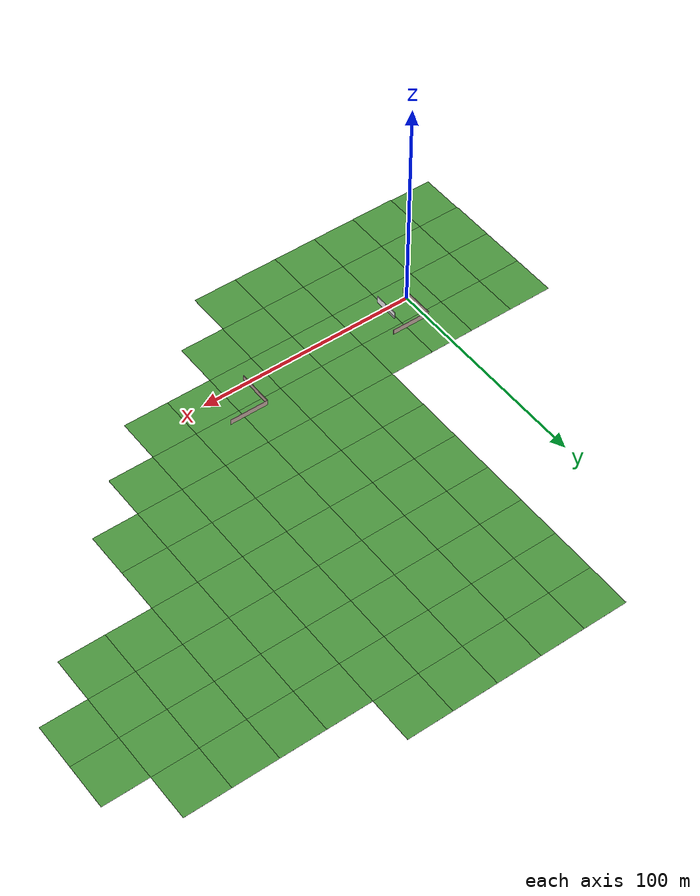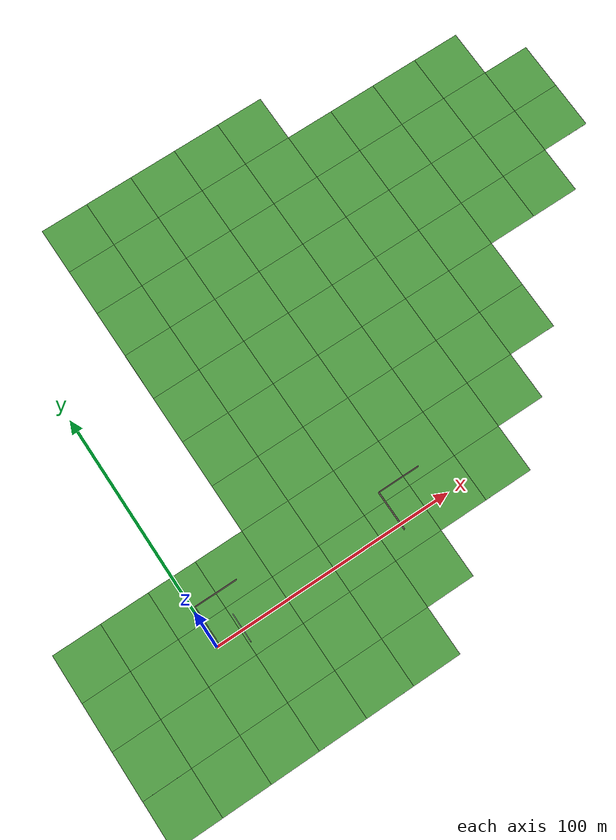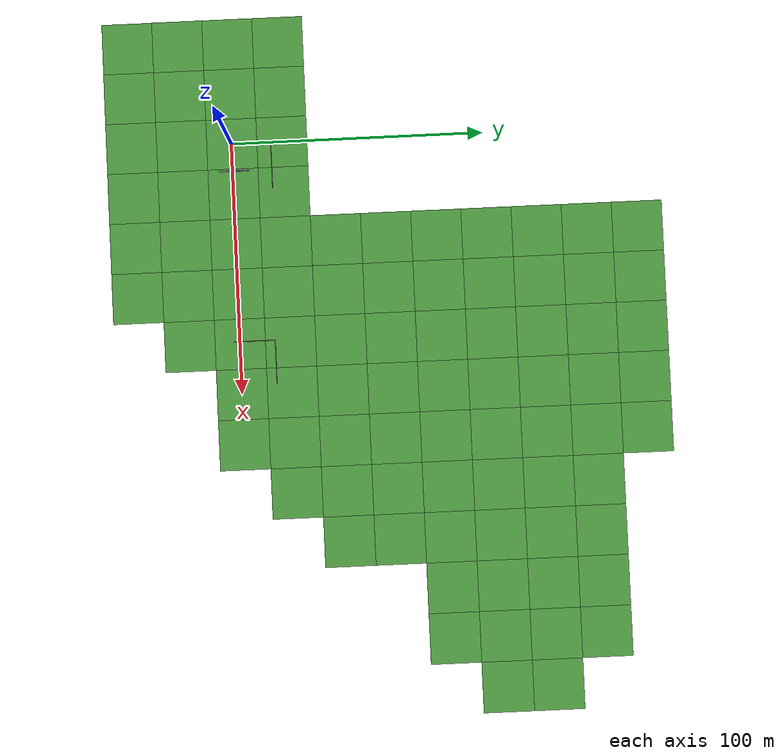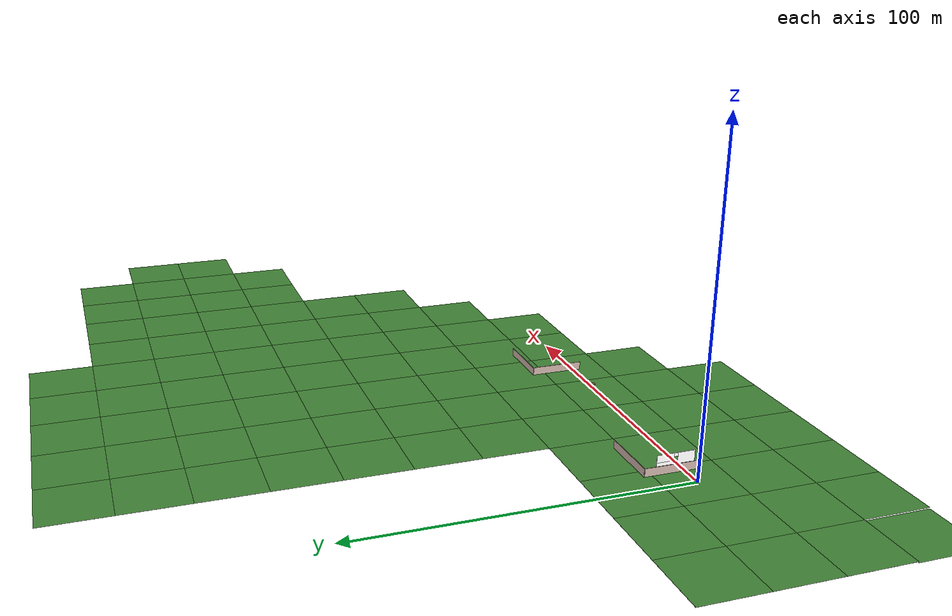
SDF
<sdf version="1.5">
 <world name="default">
  <spherical_coordinates>
   <latitude_deg>48.878922</latitude_deg>
   <longitude_deg>2.367782</longitude_deg>
  </spherical_coordinates>
  <physics type="ode">
   <real_time_update_rate>1000</real_time_update_rate>
   <max_step_size>0.001</max_step_size>
   <real_time_factor>1.0</real_time_factor>
   <max_contacts>20</max_contacts>
   <gravity>0 0 -9.81</gravity>
   <magnetic_field>0.1062e-6 20.8038e-6 -43.2881e-6</magnetic_field>
   <ode>
    <solver>
     <type>world</type>
     <min_step_size>0.0001</min_step_size>
     <iters>50</iters>
     <precon_iters>0</precon_iters>
     <sor>1.4</sor>
     <use_dynamic_moi_rescaling>1</use_dynamic_moi_rescaling>
    </solver>
    <constraints>
     <cfm>0</cfm>
     <erp>0.2</erp>
     <contact_max_correcting_vel>100.0</contact_max_correcting_vel>
     <contact_surface_layer>0.001</contact_surface_layer>
    </constraints>
   </ode>
  </physics>
  <atmosphere type="adiabatic">
   <temperature>298.15</temperature>
   <pressure>101325</pressure>
   <temperature_gradient>-0.0065</temperature_gradient>
  </atmosphere>
  <plugin name="fwman" filename="libsphinx_fwman.so">
   <spawn_point name="default"><pose>0 0 0.2 0 0 0</pose></spawn_point>
  </plugin>
  <plugin name="wind" filename="libsphinx_wind.so">
   <magnitude_mean>0.0</magnitude_mean>
   <direction_mean>0.0</direction_mean>
   <elevation_mean>0.0</elevation_mean>
   <magnitude_time_for_rise>10.0</magnitude_time_for_rise>
   <direction_time_for_rise>30.0</direction_time_for_rise>
   <elevation_time_for_rise>0.0</elevation_time_for_rise>
   <magnitude_expr>val*(1+0.05*sin(2*pi*time/15))</magnitude_expr>
   <direction_expr>360*time/60</direction_expr>
   <elevation_expr>0.03*noise()</elevation_expr>
  </plugin>
  <include><uri>model://grass_plane</uri></include>
  <include><uri>model://sun</uri></include>
  <scene>
   <sky><time>8</time><clouds><speed>12</speed></clouds></sky>
   <grid>false</grid>
   <origin_visual>false</origin_visual>
  </scene>
  <model name="wall1">
   <static>true</static>
   <pose>11.18 5.7 3.49 0 0 0</pose>
   <include><uri>model://wall</uri></include>
  </model>
  <model name="window">
   <static>true</static>
   <pose>9.3 0.7 0 0 0 1.57</pose>
   <include><uri>model://window_door</uri></include>
  </model>
  <model name="table">
   <static>true</static>
   <pose>65 -0.5 0 0 0 0</pose>
   <include><uri>model://table</uri></include>
  </model>
  <model name="wall2">
   <static>true</static>
   <pose>89 4 0 0 0 0</pose>
   <include><uri>model://wall</uri></include>
  </model>
 </world>
</sdf>

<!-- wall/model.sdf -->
<sdf version='1.6'>
  <model name='wall'>
    <pose frame=''>-1.26581 1.80502 0 0 -0 0</pose>
    <link name='Wall_0'>
      <collision name='Wall_0_Collision'>
        <geometry>
          <box>
            <size>16.5 0.15 2.5</size>
          </box>
        </geometry>
        <pose frame=''>0 0 1.25 0 -0 0</pose>
      </collision>
      <visual name='Wall_0_Visual'>
        <pose frame=''>0 0 1.25 0 -0 0</pose>
        <geometry>
          <box>
            <size>16.5 0.15 2.5</size>
          </box>
        </geometry>
        <material>
          <script>
            <uri>file://media/materials/scripts/gazebo.material</uri>
            <name>Gazebo/Grey</name>
          </script>
          <ambient>0.760784 0.662745 0.627451 1</ambient>
        </material>
        <meta>
          <layer>0</layer>
        </meta>
      </visual>
      <pose frame=''>-8.71419 -1.8e-05 0 0 0 -1.5708</pose>
    </link>
    <link name='Wall_2'>
      <collision name='Wall_2_Collision'>
        <geometry>
          <box>
            <size>17.5784 0.15 2.5</size>
          </box>
        </geometry>
        <pose frame=''>0 0 1.25 0 -0 0</pose>
      </collision>
      <visual name='Wall_2_Visual'>
        <pose frame=''>0 0 1.25 0 -0 0</pose>
        <geometry>
          <box>
            <size>17.5784 0.15 2.5</size>
          </box>
        </geometry>
        <material>
          <script>
            <uri>file://media/materials/scripts/gazebo.material</uri>
            <name>Gazebo/Grey</name>
          </script>
          <ambient>0.760784 0.662745 0.627451 1</ambient>
        </material>
        <meta>
          <layer>0</layer>
        </meta>
      </visual>
      <pose frame=''>0 8.17066 0 0 0 -0.000496</pose>
    </link>
    <static>1</static>
  </model>
</sdf>

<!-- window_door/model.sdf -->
<sdf version="1.5">
  <model name="window2">
    <pose>-0.12 -1.66 0 0 -0 0</pose>
    <link name="Wall_0">
      <pose>-0 0 0 0 -0 0</pose>
      <visual name="Wall_0_Visual_0">
        <pose>-3.2425 0 1.75 0 -0 0</pose>
        <geometry>
          <box>
            <size>5.265 0.15 3.5</size>
          </box>
        </geometry>
        <material>
          <script>
            <uri>model://window_door/materials/scripts</uri>
            <uri>model://window_door/materials/textures</uri>
            <name>Wall/NiceWall</name>
          </script>
          <ambient>1 1 1 1</ambient>
        </material>
      </visual>
      <collision name="Wall_0_Collision_0">
        <geometry>
          <box>
            <size>5.265 0.15 3.5</size>
          </box>
        </geometry>
        <pose>-3.2425 0 1.75 0 -0 0</pose>
      </collision>
      <visual name="Wall_0_Visual_1">
        <pose>2.6325 0 0.6 0 -0 0</pose>
        <geometry>
          <box>
            <size>6.485 0.15 1.2</size>
          </box>
        </geometry>
        <material>
          <script>
            <uri>model://window_door/materials/scripts</uri>
            <uri>model://window_door/materials/textures</uri>
            <name>Wall/NiceWall</name>
          </script>
          <ambient>1 1 1 1</ambient>
        </material>
      </visual>
      <collision name="Wall_0_Collision_1">
        <geometry>
          <box>
            <size>6.485 0.15 1.2</size>
          </box>
        </geometry>
        <pose>2.6325 0 0.6 0 -0 0</pose>
      </collision>
      <visual name="Wall_0_Visual_2">
        <pose>3.2325 0 2.35 0 -0 0</pose>
        <geometry>
          <box>
            <size>5.285 0.15 2.3</size>
          </box>
        </geometry>
        <material>
          <script>
            <uri>model://window_door/materials/scripts</uri>
            <uri>model://window_door/materials/textures</uri>
            <name>Wall/NiceWall</name>
          </script>
          <ambient>1 1 1 1</ambient>
        </material>
      </visual>
      <collision name="Wall_0_Collision_2">
        <geometry>
          <box>
            <size>5.285 0.15 2.3</size>
          </box>
        </geometry>
        <pose>3.2325 0 2.35 0 -0 0</pose>
      </collision>
      <visual name="Wall_0_Visual_3">
        <pose>-0.01 0 2.95 0 -0 0</pose>
        <geometry>
          <box>
            <size>1.2 0.15 1.1</size>
          </box>
        </geometry>
        <material>
          <script>
            <uri>model://window_door/materials/scripts</uri>
            <uri>model://window_door/materials/textures</uri>
            <name>Wall/NiceWall</name>
          </script>
          <ambient>1 1 1 1</ambient>
        </material>
      </visual>
      <collision name="Wall_0_Collision_3">
        <geometry>
          <box>
            <size>1.2 0.15 1.1</size>
          </box>
        </geometry>
        <pose>-0.01 0 2.95 0 -0 0</pose>
      </collision>
    </link>
    <static>1</static>
  </model>
</sdf>

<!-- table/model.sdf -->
<sdf version="1.5">
  <model name="table">
    <static>true</static>
    <link name="link">
      <collision name="surface">
        <pose>0 0 1.0 0 0 0</pose>
        <geometry>
          <box>
            <size>1.5 0.8 0.03</size>
          </box>
        </geometry>
        <surface>
          <friction>
            <ode>
              <mu>0.6</mu>
              <mu2>0.6</mu2>
            </ode>
          </friction>
        </surface>
      </collision>
      <visual name="visual1">
        <pose>0 0 1.0 0 0 0</pose>
        <geometry>
          <box>
            <size>1.5 0.8 0.03</size>
          </box>
        </geometry>
        <material>
          <script>
            <uri>model://media/materials/scripts/gazebo.material</uri>
            <name>Gazebo/Wood</name>
          </script>
        </material>
      </visual>
      <collision name="front_left_leg">
        <pose>0.68 0.38 0.5 0 0 0</pose>
        <geometry>
          <cylinder>
            <radius>0.02</radius>
            <length>1.0</length>
          </cylinder>
        </geometry>
      </collision>
      <visual name="front_left_leg">
        <pose>0.68 0.38 0.5 0 0 0</pose>
        <geometry>
          <cylinder>
            <radius>0.02</radius>
            <length>1.0</length>
          </cylinder>
        </geometry>
        <material>
          <script>
            <uri>model://media/materials/scripts/gazebo.material</uri>
            <name>Gazebo/Grey</name>
          </script>
        </material>
      </visual>
      <collision name="front_right_leg">
        <pose>0.68 -0.38 0.5 0 0 0</pose>
        <geometry>
          <cylinder>
            <radius>0.02</radius>
            <length>1.0</length>
          </cylinder>
        </geometry>
      </collision>
      <visual name="front_right_leg">
        <pose>0.68 -0.38 0.5 0 0 0</pose>
        <geometry>
          <cylinder>
            <radius>0.02</radius>
            <length>1.0</length>
          </cylinder>
        </geometry>
        <material>
          <script>
            <uri>model://media/materials/scripts/gazebo.material</uri>
            <name>Gazebo/Grey</name>
          </script>
        </material>
      </visual>
      <collision name="back_right_leg">
        <pose>-0.68 -0.38 0.5 0 0 0</pose>
        <geometry>
          <cylinder>
            <radius>0.02</radius>
            <length>1.0</length>
          </cylinder>
        </geometry>
      </collision>
      <visual name="back_right_leg">
        <pose>-0.68 -0.38 0.5 0 0 0</pose>
        <geometry>
          <cylinder>
            <radius>0.02</radius>
            <length>1.0</length>
          </cylinder>
        </geometry>
        <material>
          <script>
            <uri>model://media/materials/scripts/gazebo.material</uri>
            <name>Gazebo/Grey</name>
          </script>
        </material>
      </visual>
      <collision name="back_left_leg">
        <pose>-0.68 0.38 0.5 0 0 0</pose>
        <geometry>
          <cylinder>
            <radius>0.02</radius>
            <length>1.0</length>
          </cylinder>
        </geometry>
      </collision>
      <visual name="back_left_leg">
        <pose>-0.68 0.38 0.5 0 0 0</pose>
        <geometry>
          <cylinder>
            <radius>0.02</radius>
            <length>1.0</length>
          </cylinder>
        </geometry>
        <material>
          <script>
            <uri>model://media/materials/scripts/gazebo.material</uri>
            <name>Gazebo/Grey</name>
          </script>
        </material>
      </visual>
    </link>
  </model>
</sdf>

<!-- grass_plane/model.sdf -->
<sdf version='1.4'>
  <model name='grass_plane'>
    <static>true</static>
    <link name='link'>
      <collision name='collision'>
        <geometry>
          <plane>
            <normal>0 0 1</normal>
            <size>500 500</size>
          </plane>
        </geometry>
        <surface>
          <friction>
            <ode>
              <mu>0.5</mu>
              <mu2>.5</mu2>
            </ode>
          </friction>
        </surface>
      </collision>

      <visual name='visual_0'>
        <pose>-40 -40 0 0 0 0</pose>

        <cast_shadows>false</cast_shadows>
        <geometry>
          <plane>
            <normal>0 0 1</normal>
            <size>20 20</size>
          </plane>
        </geometry>
        <material>
          <script>
            <uri>model://../model_source/models/grass_plane/materials/scripts</uri>
            <uri>model://../model_source/models/grass_plane/materials/textures</uri>
            <name>vrc/grass</name>
          </script>
        </material>
      </visual>

      <visual name='visual_1'>
        <pose>-20 -40 0 0 0 0</pose>

        <cast_shadows>false</cast_shadows>
        <geometry>
          <plane>
            <normal>0 0 1</normal>
            <size>20 20</size>
          </plane>
        </geometry>
        <material>
          <script>
            <uri>model://../model_source/models/grass_plane/materials/scripts</uri>
            <uri>model://../model_source/models/grass_plane/materials/textures</uri>
            <name>vrc/grass</name>
          </script>
        </material>
      </visual>

      <visual name='visual_2'>
        <pose>0 -40 0 0 0 0</pose>

        <cast_shadows>false</cast_shadows>
        <geometry>
          <plane>
            <normal>0 0 1</normal>
            <size>20 20</size>
          </plane>
        </geometry>
        <material>
          <script>
            <uri>model://../model_source/models/grass_plane/materials/scripts</uri>
            <uri>model://../model_source/models/grass_plane/materials/textures</uri>
            <name>vrc/grass</name>
          </script>
        </material>
      </visual>

      <visual name='visual_3'>
        <pose>20 -40 0 0 0 0</pose>

        <cast_shadows>false</cast_shadows>
        <geometry>
          <plane>
            <normal>0 0 1</normal>
            <size>20 20</size>
          </plane>
        </geometry>
        <material>
          <script>
            <uri>model://../model_source/models/grass_plane/materials/scripts</uri>
            <uri>model://../model_source/models/grass_plane/materials/textures</uri>
            <name>vrc/grass</name>
          </script>
        </material>
      </visual>

      <visual name='visual_4'>
        <pose>40 -40 0 0 0 0</pose>

        <cast_shadows>false</cast_shadows>
        <geometry>
          <plane>
            <normal>0 0 1</normal>
            <size>20 20</size>
          </plane>
        </geometry>
        <material>
          <script>
            <uri>model://../model_source/models/grass_plane/materials/scripts</uri>
            <uri>model://../model_source/models/grass_plane/materials/textures</uri>
            <name>vrc/grass</name>
          </script>
        </material>
      </visual>

      <visual name='visual_5'>
        <pose>60 -40 0 0 0 0</pose>

        <cast_shadows>false</cast_shadows>
        <geometry>
          <plane>
            <normal>0 0 1</normal>
            <size>20 20</size>
          </plane>
        </geometry>
        <material>
          <script>
            <uri>model://../model_source/models/grass_plane/materials/scripts</uri>
            <uri>model://../model_source/models/grass_plane/materials/textures</uri>
            <name>vrc/grass</name>
          </script>
        </material>
      </visual>

      <visual name='visual_6'>
        <pose>-40 -20 0 0 0 0</pose>

        <cast_shadows>false</cast_shadows>
        <geometry>
          <plane>
            <normal>0 0 1</normal>
            <size>20 20</size>
          </plane>
        </geometry>
        <material>
          <script>
            <uri>model://../model_source/models/grass_plane/materials/scripts</uri>
            <uri>model://../model_source/models/grass_plane/materials/textures</uri>
            <name>vrc/grass</name>
          </script>
        </material>
      </visual>

      <visual name='visual_7'>
        <pose>-20 -20 0 0 0 0</pose>

        <cast_shadows>false</cast_shadows>
        <geometry>
          <plane>
            <normal>0 0 1</normal>
            <size>20 20</size>
          </plane>
        </geometry>
        <material>
          <script>
            <uri>model://../model_source/models/grass_plane/materials/scripts</uri>
            <uri>model://../model_source/models/grass_plane/materials/textures</uri>
            <name>vrc/grass</name>
          </script>
        </material>
      </visual>

      <visual name='visual_8'>
        <pose>0 -20 0 0 0 0</pose>

        <cast_shadows>false</cast_shadows>
        <geometry>
          <plane>
            <normal>0 0 1</normal>
            <size>20 20</size>
          </plane>
        </geometry>
        <material>
          <script>
            <uri>model://../model_source/models/grass_plane/materials/scripts</uri>
            <uri>model://../model_source/models/grass_plane/materials/textures</uri>
            <name>vrc/grass</name>
          </script>
        </material>
      </visual>

      <visual name='visual_9'>
        <pose>20 -20 0 0 0 0</pose>

        <cast_shadows>false</cast_shadows>
        <geometry>
          <plane>
            <normal>0 0 1</normal>
            <size>20 20</size>
          </plane>
        </geometry>
        <material>
          <script>
            <uri>model://../model_source/models/grass_plane/materials/scripts</uri>
            <uri>model://../model_source/models/grass_plane/materials/textures</uri>
            <name>vrc/grass</name>
          </script>
        </material>
      </visual>

      <visual name='visual_10'>
        <pose>40 -20 0 0 0 0</pose>

        <cast_shadows>false</cast_shadows>
        <geometry>
          <plane>
            <normal>0 0 1</normal>
            <size>20 20</size>
          </plane>
        </geometry>
        <material>
          <script>
            <uri>model://../model_source/models/grass_plane/materials/scripts</uri>
            <uri>model://../model_source/models/grass_plane/materials/textures</uri>
            <name>vrc/grass</name>
          </script>
        </material>
      </visual>

      <visual name='visual_11'>
        <pose>60 -20 0 0 0 0</pose>

        <cast_shadows>false</cast_shadows>
        <geometry>
          <plane>
            <normal>0 0 1</normal>
            <size>20 20</size>
          </plane>
        </geometry>
        <material>
          <script>
            <uri>model://../model_source/models/grass_plane/materials/scripts</uri>
            <uri>model://../model_source/models/grass_plane/materials/textures</uri>
            <name>vrc/grass</name>
          </script>
        </material>
      </visual>

      <visual name='visual_12'>
        <pose>80 -20 0 0 0 0</pose>

        <cast_shadows>false</cast_shadows>
        <geometry>
          <plane>
            <normal>0 0 1</normal>
            <size>20 20</size>
          </plane>
        </geometry>
        <material>
          <script>
            <uri>model://../model_source/models/grass_plane/materials/scripts</uri>
            <uri>model://../model_source/models/grass_plane/materials/textures</uri>
            <name>vrc/grass</name>
          </script>
        </material>
      </visual>

      <visual name='visual_13'>
        <pose>-40 0 0 0 0 0</pose>

        <cast_shadows>false</cast_shadows>
        <geometry>
          <plane>
            <normal>0 0 1</normal>
            <size>20 20</size>
          </plane>
        </geometry>
        <material>
          <script>
            <uri>model://../model_source/models/grass_plane/materials/scripts</uri>
            <uri>model://../model_source/models/grass_plane/materials/textures</uri>
            <name>vrc/grass</name>
          </script>
        </material>
      </visual>

      <visual name='visual_14'>
        <pose>-20 0 0 0 0 0</pose>

        <cast_shadows>false</cast_shadows>
        <geometry>
          <plane>
            <normal>0 0 1</normal>
            <size>20 20</size>
          </plane>
        </geometry>
        <material>
          <script>
            <uri>model://../model_source/models/grass_plane/materials/scripts</uri>
            <uri>model://../model_source/models/grass_plane/materials/textures</uri>
            <name>vrc/grass</name>
          </script>
        </material>
      </visual>

      <visual name='visual_15'>
        <pose>0 0 0 0 0 0</pose>

        <cast_shadows>false</cast_shadows>
        <geometry>
          <plane>
            <normal>0 0 1</normal>
            <size>20 20</size>
          </plane>
        </geometry>
        <material>
          <script>
            <uri>model://../model_source/models/grass_plane/materials/scripts</uri>
            <uri>model://../model_source/models/grass_plane/materials/textures</uri>
            <name>vrc/grass</name>
          </script>
        </material>
      </visual>

      <visual name='visual_16'>
        <pose>20 0 0 0 0 0</pose>

        <cast_shadows>false</cast_shadows>
        <geometry>
          <plane>
            <normal>0 0 1</normal>
            <size>20 20</size>
          </plane>
        </geometry>
        <material>
          <script>
            <uri>model://../model_source/models/grass_plane/materials/scripts</uri>
            <uri>model://../model_source/models/grass_plane/materials/textures</uri>
            <name>vrc/grass</name>
          </script>
        </material>
      </visual>

      <visual name='visual_17'>
        <pose>40 0 0 0 0 0</pose>

        <cast_shadows>false</cast_shadows>
        <geometry>
          <plane>
            <normal>0 0 1</normal>
            <size>20 20</size>
          </plane>
        </geometry>
        <material>
          <script>
            <uri>model://../model_source/models/grass_plane/materials/scripts</uri>
            <uri>model://../model_source/models/grass_plane/materials/textures</uri>
            <name>vrc/grass</name>
          </script>
        </material>
      </visual>

      <visual name='visual_18'>
        <pose>60 0 0 0 0 0</pose>

        <cast_shadows>false</cast_shadows>
        <geometry>
          <plane>
            <normal>0 0 1</normal>
            <size>20 20</size>
          </plane>
        </geometry>
        <material>
          <script>
            <uri>model://../model_source/models/grass_plane/materials/scripts</uri>
            <uri>model://../model_source/models/grass_plane/materials/textures</uri>
            <name>vrc/grass</name>
          </script>
        </material>
      </visual>

      <visual name='visual_19'>
        <pose>80 0 0 0 0 0</pose>

        <cast_shadows>false</cast_shadows>
        <geometry>
          <plane>
            <normal>0 0 1</normal>
            <size>20 20</size>
          </plane>
        </geometry>
        <material>
          <script>
            <uri>model://../model_source/models/grass_plane/materials/scripts</uri>
            <uri>model://../model_source/models/grass_plane/materials/textures</uri>
            <name>vrc/grass</name>
          </script>
        </material>
      </visual>

      <visual name='visual_20'>
        <pose>100 0 0 0 0 0</pose>

        <cast_shadows>false</cast_shadows>
        <geometry>
          <plane>
            <normal>0 0 1</normal>
            <size>20 20</size>
          </plane>
        </geometry>
        <material>
          <script>
            <uri>model://../model_source/models/grass_plane/materials/scripts</uri>
            <uri>model://../model_source/models/grass_plane/materials/textures</uri>
            <name>vrc/grass</name>
          </script>
        </material>
      </visual>

      <visual name='visual_21'>
        <pose>120 0 0 0 0 0</pose>

        <cast_shadows>false</cast_shadows>
        <geometry>
          <plane>
            <normal>0 0 1</normal>
            <size>20 20</size>
          </plane>
        </geometry>
        <material>
          <script>
            <uri>model://../model_source/models/grass_plane/materials/scripts</uri>
            <uri>model://../model_source/models/grass_plane/materials/textures</uri>
            <name>vrc/grass</name>
          </script>
        </material>
      </visual>

      <visual name='visual_22'>
        <pose>-40 20 0 0 0 0</pose>

        <cast_shadows>false</cast_shadows>
        <geometry>
          <plane>
            <normal>0 0 1</normal>
            <size>20 20</size>
          </plane>
        </geometry>
        <material>
          <script>
            <uri>model://../model_source/models/grass_plane/materials/scripts</uri>
            <uri>model://../model_source/models/grass_plane/materials/textures</uri>
            <name>vrc/grass</name>
          </script>
        </material>
      </visual>

      <visual name='visual_23'>
        <pose>-20 20 0 0 0 0</pose>

        <cast_shadows>false</cast_shadows>
        <geometry>
          <plane>
            <normal>0 0 1</normal>
            <size>20 20</size>
          </plane>
        </geometry>
        <material>
          <script>
            <uri>model://../model_source/models/grass_plane/materials/scripts</uri>
            <uri>model://../model_source/models/grass_plane/materials/textures</uri>
            <name>vrc/grass</name>
          </script>
        </material>
      </visual>

      <visual name='visual_24'>
        <pose>0 20 0 0 0 0</pose>

        <cast_shadows>false</cast_shadows>
        <geometry>
          <plane>
            <normal>0 0 1</normal>
            <size>20 20</size>
          </plane>
        </geometry>
        <material>
          <script>
            <uri>model://../model_source/models/grass_plane/materials/scripts</uri>
            <uri>model://../model_source/models/grass_plane/materials/textures</uri>
            <name>vrc/grass</name>
          </script>
        </material>
      </visual>

      <visual name='visual_25'>
        <pose>20 20 0 0 0 0</pose>

        <cast_shadows>false</cast_shadows>
        <geometry>
          <plane>
            <normal>0 0 1</normal>
            <size>20 20</size>
          </plane>
        </geometry>
        <material>
          <script>
            <uri>model://../model_source/models/grass_plane/materials/scripts</uri>
            <uri>model://../model_source/models/grass_plane/materials/textures</uri>
            <name>vrc/grass</name>
          </script>
        </material>
      </visual>

      <visual name='visual_26'>
        <pose>40 20 0 0 0 0</pose>

        <cast_shadows>false</cast_shadows>
        <geometry>
          <plane>
            <normal>0 0 1</normal>
            <size>20 20</size>
          </plane>
        </geometry>
        <material>
          <script>
            <uri>model://../model_source/models/grass_plane/materials/scripts</uri>
            <uri>model://../model_source/models/grass_plane/materials/textures</uri>
            <name>vrc/grass</name>
          </script>
        </material>
      </visual>

      <visual name='visual_27'>
        <pose>60 20 0 0 0 0</pose>

        <cast_shadows>false</cast_shadows>
        <geometry>
          <plane>
            <normal>0 0 1</normal>
            <size>20 20</size>
          </plane>
        </geometry>
        <material>
          <script>
            <uri>model://../model_source/models/grass_plane/materials/scripts</uri>
            <uri>model://../model_source/models/grass_plane/materials/textures</uri>
            <name>vrc/grass</name>
          </script>
        </material>
      </visual>

      <visual name='visual_28'>
        <pose>80 20 0 0 0 0</pose>

        <cast_shadows>false</cast_shadows>
        <geometry>
          <plane>
            <normal>0 0 1</normal>
            <size>20 20</size>
          </plane>
        </geometry>
        <material>
          <script>
            <uri>model://../model_source/models/grass_plane/materials/scripts</uri>
            <uri>model://../model_source/models/grass_plane/materials/textures</uri>
            <name>vrc/grass</name>
          </script>
        </material>
      </visual>

      <visual name='visual_29'>
        <pose>100 20 0 0 0 0</pose>

        <cast_shadows>false</cast_shadows>
        <geometry>
          <plane>
            <normal>0 0 1</normal>
            <size>20 20</size>
          </plane>
        </geometry>
        <material>
          <script>
            <uri>model://../model_source/models/grass_plane/materials/scripts</uri>
            <uri>model://../model_source/models/grass_plane/materials/textures</uri>
            <name>vrc/grass</name>
          </script>
        </material>
      </visual>

      <visual name='visual_30'>
        <pose>120 20 0 0 0 0</pose>

        <cast_shadows>false</cast_shadows>
        <geometry>
          <plane>
            <normal>0 0 1</normal>
            <size>20 20</size>
          </plane>
        </geometry>
        <material>
          <script>
            <uri>model://../model_source/models/grass_plane/materials/scripts</uri>
            <uri>model://../model_source/models/grass_plane/materials/textures</uri>
            <name>vrc/grass</name>
          </script>
        </material>
      </visual>

      <visual name='visual_31'>
        <pose>140 20 0 0 0 0</pose>

        <cast_shadows>false</cast_shadows>
        <geometry>
          <plane>
            <normal>0 0 1</normal>
            <size>20 20</size>
          </plane>
        </geometry>
        <material>
          <script>
            <uri>model://../model_source/models/grass_plane/materials/scripts</uri>
            <uri>model://../model_source/models/grass_plane/materials/textures</uri>
            <name>vrc/grass</name>
          </script>
        </material>
      </visual>

      <visual name='visual_32'>
        <pose>40 40 0 0 0 0</pose>

        <cast_shadows>false</cast_shadows>
        <geometry>
          <plane>
            <normal>0 0 1</normal>
            <size>20 20</size>
          </plane>
        </geometry>
        <material>
          <script>
            <uri>model://../model_source/models/grass_plane/materials/scripts</uri>
            <uri>model://../model_source/models/grass_plane/materials/textures</uri>
            <name>vrc/grass</name>
          </script>
        </material>
      </visual>

      <visual name='visual_33'>
        <pose>60 40 0 0 0 0</pose>

        <cast_shadows>false</cast_shadows>
        <geometry>
          <plane>
            <normal>0 0 1</normal>
            <size>20 20</size>
          </plane>
        </geometry>
        <material>
          <script>
            <uri>model://../model_source/models/grass_plane/materials/scripts</uri>
            <uri>model://../model_source/models/grass_plane/materials/textures</uri>
            <name>vrc/grass</name>
          </script>
        </material>
      </visual>

      <visual name='visual_34'>
        <pose>80 40 0 0 0 0</pose>

        <cast_shadows>false</cast_shadows>
        <geometry>
          <plane>
            <normal>0 0 1</normal>
            <size>20 20</size>
          </plane>
        </geometry>
        <material>
          <script>
            <uri>model://../model_source/models/grass_plane/materials/scripts</uri>
            <uri>model://../model_source/models/grass_plane/materials/textures</uri>
            <name>vrc/grass</name>
          </script>
        </material>
      </visual>

      <visual name='visual_35'>
        <pose>100 40 0 0 0 0</pose>

        <cast_shadows>false</cast_shadows>
        <geometry>
          <plane>
            <normal>0 0 1</normal>
            <size>20 20</size>
          </plane>
        </geometry>
        <material>
          <script>
            <uri>model://../model_source/models/grass_plane/materials/scripts</uri>
            <uri>model://../model_source/models/grass_plane/materials/textures</uri>
            <name>vrc/grass</name>
          </script>
        </material>
      </visual>

      <visual name='visual_36'>
        <pose>120 40 0 0 0 0</pose>

        <cast_shadows>false</cast_shadows>
        <geometry>
          <plane>
            <normal>0 0 1</normal>
            <size>20 20</size>
          </plane>
        </geometry>
        <material>
          <script>
            <uri>model://../model_source/models/grass_plane/materials/scripts</uri>
            <uri>model://../model_source/models/grass_plane/materials/textures</uri>
            <name>vrc/grass</name>
          </script>
        </material>
      </visual>

      <visual name='visual_37'>
        <pose>140 40 0 0 0 0</pose>

        <cast_shadows>false</cast_shadows>
        <geometry>
          <plane>
            <normal>0 0 1</normal>
            <size>20 20</size>
          </plane>
        </geometry>
        <material>
          <script>
            <uri>model://../model_source/models/grass_plane/materials/scripts</uri>
            <uri>model://../model_source/models/grass_plane/materials/textures</uri>
            <name>vrc/grass</name>
          </script>
        </material>
      </visual>

      <visual name='visual_38'>
        <pose>160 40 0 0 0 0</pose>

        <cast_shadows>false</cast_shadows>
        <geometry>
          <plane>
            <normal>0 0 1</normal>
            <size>20 20</size>
          </plane>
        </geometry>
        <material>
          <script>
            <uri>model://../model_source/models/grass_plane/materials/scripts</uri>
            <uri>model://../model_source/models/grass_plane/materials/textures</uri>
            <name>vrc/grass</name>
          </script>
        </material>
      </visual>

      <visual name='visual_39'>
        <pose>40 60 0 0 0 0</pose>

        <cast_shadows>false</cast_shadows>
        <geometry>
          <plane>
            <normal>0 0 1</normal>
            <size>20 20</size>
          </plane>
        </geometry>
        <material>
          <script>
            <uri>model://../model_source/models/grass_plane/materials/scripts</uri>
            <uri>model://../model_source/models/grass_plane/materials/textures</uri>
            <name>vrc/grass</name>
          </script>
        </material>
      </visual>

      <visual name='visual_40'>
        <pose>60 60 0 0 0 0</pose>

        <cast_shadows>false</cast_shadows>
        <geometry>
          <plane>
            <normal>0 0 1</normal>
            <size>20 20</size>
          </plane>
        </geometry>
        <material>
          <script>
            <uri>model://../model_source/models/grass_plane/materials/scripts</uri>
            <uri>model://../model_source/models/grass_plane/materials/textures</uri>
            <name>vrc/grass</name>
          </script>
        </material>
      </visual>

      <visual name='visual_41'>
        <pose>80 60 0 0 0 0</pose>

        <cast_shadows>false</cast_shadows>
        <geometry>
          <plane>
            <normal>0 0 1</normal>
            <size>20 20</size>
          </plane>
        </geometry>
        <material>
          <script>
            <uri>model://../model_source/models/grass_plane/materials/scripts</uri>
            <uri>model://../model_source/models/grass_plane/materials/textures</uri>
            <name>vrc/grass</name>
          </script>
        </material>
      </visual>

      <visual name='visual_42'>
        <pose>100 60 0 0 0 0</pose>

        <cast_shadows>false</cast_shadows>
        <geometry>
          <plane>
            <normal>0 0 1</normal>
            <size>20 20</size>
          </plane>
        </geometry>
        <material>
          <script>
            <uri>model://../model_source/models/grass_plane/materials/scripts</uri>
            <uri>model://../model_source/models/grass_plane/materials/textures</uri>
            <name>vrc/grass</name>
          </script>
        </material>
      </visual>

      <visual name='visual_43'>
        <pose>120 60 0 0 0 0</pose>

        <cast_shadows>false</cast_shadows>
        <geometry>
          <plane>
            <normal>0 0 1</normal>
            <size>20 20</size>
          </plane>
        </geometry>
        <material>
          <script>
            <uri>model://../model_source/models/grass_plane/materials/scripts</uri>
            <uri>model://../model_source/models/grass_plane/materials/textures</uri>
            <name>vrc/grass</name>
          </script>
        </material>
      </visual>

      <visual name='visual_44'>
        <pose>140 60 0 0 0 0</pose>

        <cast_shadows>false</cast_shadows>
        <geometry>
          <plane>
            <normal>0 0 1</normal>
            <size>20 20</size>
          </plane>
        </geometry>
        <material>
          <script>
            <uri>model://../model_source/models/grass_plane/materials/scripts</uri>
            <uri>model://../model_source/models/grass_plane/materials/textures</uri>
            <name>vrc/grass</name>
          </script>
        </material>
      </visual>

      <visual name='visual_45'>
        <pose>160 60 0 0 0 0</pose>

        <cast_shadows>false</cast_shadows>
        <geometry>
          <plane>
            <normal>0 0 1</normal>
            <size>20 20</size>
          </plane>
        </geometry>
        <material>
          <script>
            <uri>model://../model_source/models/grass_plane/materials/scripts</uri>
            <uri>model://../model_source/models/grass_plane/materials/textures</uri>
            <name>vrc/grass</name>
          </script>
        </material>
      </visual>

      <visual name='visual_46'>
        <pose>40 80 0 0 0 0</pose>

        <cast_shadows>false</cast_shadows>
        <geometry>
          <plane>
            <normal>0 0 1</normal>
            <size>20 20</size>
          </plane>
        </geometry>
        <material>
          <script>
            <uri>model://../model_source/models/grass_plane/materials/scripts</uri>
            <uri>model://../model_source/models/grass_plane/materials/textures</uri>
            <name>vrc/grass</name>
          </script>
        </material>
      </visual>

      <visual name='visual_47'>
        <pose>60 80 0 0 0 0</pose>

        <cast_shadows>false</cast_shadows>
        <geometry>
          <plane>
            <normal>0 0 1</normal>
            <size>20 20</size>
          </plane>
        </geometry>
        <material>
          <script>
            <uri>model://../model_source/models/grass_plane/materials/scripts</uri>
            <uri>model://../model_source/models/grass_plane/materials/textures</uri>
            <name>vrc/grass</name>
          </script>
        </material>
      </visual>

      <visual name='visual_48'>
        <pose>80 80 0 0 0 0</pose>

        <cast_shadows>false</cast_shadows>
        <geometry>
          <plane>
            <normal>0 0 1</normal>
            <size>20 20</size>
          </plane>
        </geometry>
        <material>
          <script>
            <uri>model://../model_source/models/grass_plane/materials/scripts</uri>
            <uri>model://../model_source/models/grass_plane/materials/textures</uri>
            <name>vrc/grass</name>
          </script>
        </material>
      </visual>

      <visual name='visual_49'>
        <pose>100 80 0 0 0 0</pose>

        <cast_shadows>false</cast_shadows>
        <geometry>
          <plane>
            <normal>0 0 1</normal>
            <size>20 20</size>
          </plane>
        </geometry>
        <material>
          <script>
            <uri>model://../model_source/models/grass_plane/materials/scripts</uri>
            <uri>model://../model_source/models/grass_plane/materials/textures</uri>
            <name>vrc/grass</name>
          </script>
        </material>
      </visual>

      <visual name='visual_50'>
        <pose>120 80 0 0 0 0</pose>

        <cast_shadows>false</cast_shadows>
        <geometry>
          <plane>
            <normal>0 0 1</normal>
            <size>20 20</size>
          </plane>
        </geometry>
        <material>
          <script>
            <uri>model://../model_source/models/grass_plane/materials/scripts</uri>
            <uri>model://../model_source/models/grass_plane/materials/textures</uri>
            <name>vrc/grass</name>
          </script>
        </material>
      </visual>

      <visual name='visual_51'>
        <pose>140 80 0 0 0 0</pose>

        <cast_shadows>false</cast_shadows>
        <geometry>
          <plane>
            <normal>0 0 1</normal>
            <size>20 20</size>
          </plane>
        </geometry>
        <material>
          <script>
            <uri>model://../model_source/models/grass_plane/materials/scripts</uri>
            <uri>model://../model_source/models/grass_plane/materials/textures</uri>
            <name>vrc/grass</name>
          </script>
        </material>
      </visual>

      <visual name='visual_52'>
        <pose>160 80 0 0 0 0</pose>

        <cast_shadows>false</cast_shadows>
        <geometry>
          <plane>
            <normal>0 0 1</normal>
            <size>20 20</size>
          </plane>
        </geometry>
        <material>
          <script>
            <uri>model://../model_source/models/grass_plane/materials/scripts</uri>
            <uri>model://../model_source/models/grass_plane/materials/textures</uri>
            <name>vrc/grass</name>
          </script>
        </material>
      </visual>

      <visual name='visual_53'>
        <pose>180 80 0 0 0 0</pose>

        <cast_shadows>false</cast_shadows>
        <geometry>
          <plane>
            <normal>0 0 1</normal>
            <size>20 20</size>
          </plane>
        </geometry>
        <material>
          <script>
            <uri>model://../model_source/models/grass_plane/materials/scripts</uri>
            <uri>model://../model_source/models/grass_plane/materials/textures</uri>
            <name>vrc/grass</name>
          </script>
        </material>
      </visual>

      <visual name='visual_54'>
        <pose>200 80 0 0 0 0</pose>

        <cast_shadows>false</cast_shadows>
        <geometry>
          <plane>
            <normal>0 0 1</normal>
            <size>20 20</size>
          </plane>
        </geometry>
        <material>
          <script>
            <uri>model://../model_source/models/grass_plane/materials/scripts</uri>
            <uri>model://../model_source/models/grass_plane/materials/textures</uri>
            <name>vrc/grass</name>
          </script>
        </material>
      </visual>

      <visual name='visual_55'>
        <pose>40 100 0 0 0 0</pose>

        <cast_shadows>false</cast_shadows>
        <geometry>
          <plane>
            <normal>0 0 1</normal>
            <size>20 20</size>
          </plane>
        </geometry>
        <material>
          <script>
            <uri>model://../model_source/models/grass_plane/materials/scripts</uri>
            <uri>model://../model_source/models/grass_plane/materials/textures</uri>
            <name>vrc/grass</name>
          </script>
        </material>
      </visual>

      <visual name='visual_56'>
        <pose>60 100 0 0 0 0</pose>

        <cast_shadows>false</cast_shadows>
        <geometry>
          <plane>
            <normal>0 0 1</normal>
            <size>20 20</size>
          </plane>
        </geometry>
        <material>
          <script>
            <uri>model://../model_source/models/grass_plane/materials/scripts</uri>
            <uri>model://../model_source/models/grass_plane/materials/textures</uri>
            <name>vrc/grass</name>
          </script>
        </material>
      </visual>

      <visual name='visual_57'>
        <pose>80 100 0 0 0 0</pose>

        <cast_shadows>false</cast_shadows>
        <geometry>
          <plane>
            <normal>0 0 1</normal>
            <size>20 20</size>
          </plane>
        </geometry>
        <material>
          <script>
            <uri>model://../model_source/models/grass_plane/materials/scripts</uri>
            <uri>model://../model_source/models/grass_plane/materials/textures</uri>
            <name>vrc/grass</name>
          </script>
        </material>
      </visual>

      <visual name='visual_58'>
        <pose>100 100 0 0 0 0</pose>

        <cast_shadows>false</cast_shadows>
        <geometry>
          <plane>
            <normal>0 0 1</normal>
            <size>20 20</size>
          </plane>
        </geometry>
        <material>
          <script>
            <uri>model://../model_source/models/grass_plane/materials/scripts</uri>
            <uri>model://../model_source/models/grass_plane/materials/textures</uri>
            <name>vrc/grass</name>
          </script>
        </material>
      </visual>

      <visual name='visual_59'>
        <pose>120 100 0 0 0 0</pose>

        <cast_shadows>false</cast_shadows>
        <geometry>
          <plane>
            <normal>0 0 1</normal>
            <size>20 20</size>
          </plane>
        </geometry>
        <material>
          <script>
            <uri>model://../model_source/models/grass_plane/materials/scripts</uri>
            <uri>model://../model_source/models/grass_plane/materials/textures</uri>
            <name>vrc/grass</name>
          </script>
        </material>
      </visual>

      <visual name='visual_60'>
        <pose>140 100 0 0 0 0</pose>

        <cast_shadows>false</cast_shadows>
        <geometry>
          <plane>
            <normal>0 0 1</normal>
            <size>20 20</size>
          </plane>
        </geometry>
        <material>
          <script>
            <uri>model://../model_source/models/grass_plane/materials/scripts</uri>
            <uri>model://../model_source/models/grass_plane/materials/textures</uri>
            <name>vrc/grass</name>
          </script>
        </material>
      </visual>

      <visual name='visual_61'>
        <pose>160 100 0 0 0 0</pose>

        <cast_shadows>false</cast_shadows>
        <geometry>
          <plane>
            <normal>0 0 1</normal>
            <size>20 20</size>
          </plane>
        </geometry>
        <material>
          <script>
            <uri>model://../model_source/models/grass_plane/materials/scripts</uri>
            <uri>model://../model_source/models/grass_plane/materials/textures</uri>
            <name>vrc/grass</name>
          </script>
        </material>
      </visual>

      <visual name='visual_62'>
        <pose>180 100 0 0 0 0</pose>

        <cast_shadows>false</cast_shadows>
        <geometry>
          <plane>
            <normal>0 0 1</normal>
            <size>20 20</size>
          </plane>
        </geometry>
        <material>
          <script>
            <uri>model://../model_source/models/grass_plane/materials/scripts</uri>
            <uri>model://../model_source/models/grass_plane/materials/textures</uri>
            <name>vrc/grass</name>
          </script>
        </material>
      </visual>

      <visual name='visual_63'>
        <pose>200 100 0 0 0 0</pose>

        <cast_shadows>false</cast_shadows>
        <geometry>
          <plane>
            <normal>0 0 1</normal>
            <size>20 20</size>
          </plane>
        </geometry>
        <material>
          <script>
            <uri>model://../model_source/models/grass_plane/materials/scripts</uri>
            <uri>model://../model_source/models/grass_plane/materials/textures</uri>
            <name>vrc/grass</name>
          </script>
        </material>
      </visual>

      <visual name='visual_63a'>
        <pose>220 100 0 0 0 0</pose>

        <cast_shadows>false</cast_shadows>
        <geometry>
          <plane>
            <normal>0 0 1</normal>
            <size>20 20</size>
          </plane>
        </geometry>
        <material>
          <script>
            <uri>model://../model_source/models/grass_plane/materials/scripts</uri>
            <uri>model://../model_source/models/grass_plane/materials/textures</uri>
            <name>vrc/grass</name>
          </script>
        </material>
      </visual>

      <visual name='visual_64'>
        <pose>40 120 0 0 0 0</pose>

        <cast_shadows>false</cast_shadows>
        <geometry>
          <plane>
            <normal>0 0 1</normal>
            <size>20 20</size>
          </plane>
        </geometry>
        <material>
          <script>
            <uri>model://../model_source/models/grass_plane/materials/scripts</uri>
            <uri>model://../model_source/models/grass_plane/materials/textures</uri>
            <name>vrc/grass</name>
          </script>
        </material>
      </visual>

      <visual name='visual_65'>
        <pose>60 120 0 0 0 0</pose>

        <cast_shadows>false</cast_shadows>
        <geometry>
          <plane>
            <normal>0 0 1</normal>
            <size>20 20</size>
          </plane>
        </geometry>
        <material>
          <script>
            <uri>model://../model_source/models/grass_plane/materials/scripts</uri>
            <uri>model://../model_source/models/grass_plane/materials/textures</uri>
            <name>vrc/grass</name>
          </script>
        </material>
      </visual>

      <visual name='visual_66'>
        <pose>80 120 0 0 0 0</pose>

        <cast_shadows>false</cast_shadows>
        <geometry>
          <plane>
            <normal>0 0 1</normal>
            <size>20 20</size>
          </plane>
        </geometry>
        <material>
          <script>
            <uri>model://../model_source/models/grass_plane/materials/scripts</uri>
            <uri>model://../model_source/models/grass_plane/materials/textures</uri>
            <name>vrc/grass</name>
          </script>
        </material>
      </visual>

      <visual name='visual_67'>
        <pose>100 120 0 0 0 0</pose>

        <cast_shadows>false</cast_shadows>
        <geometry>
          <plane>
            <normal>0 0 1</normal>
            <size>20 20</size>
          </plane>
        </geometry>
        <material>
          <script>
            <uri>model://../model_source/models/grass_plane/materials/scripts</uri>
            <uri>model://../model_source/models/grass_plane/materials/textures</uri>
            <name>vrc/grass</name>
          </script>
        </material>
      </visual>

      <visual name='visual_68'>
        <pose>120 120 0 0 0 0</pose>

        <cast_shadows>false</cast_shadows>
        <geometry>
          <plane>
            <normal>0 0 1</normal>
            <size>20 20</size>
          </plane>
        </geometry>
        <material>
          <script>
            <uri>model://../model_source/models/grass_plane/materials/scripts</uri>
            <uri>model://../model_source/models/grass_plane/materials/textures</uri>
            <name>vrc/grass</name>
          </script>
        </material>
      </visual>

      <visual name='visual_69'>
        <pose>140 120 0 0 0 0</pose>

        <cast_shadows>false</cast_shadows>
        <geometry>
          <plane>
            <normal>0 0 1</normal>
            <size>20 20</size>
          </plane>
        </geometry>
        <material>
          <script>
            <uri>model://../model_source/models/grass_plane/materials/scripts</uri>
            <uri>model://../model_source/models/grass_plane/materials/textures</uri>
            <name>vrc/grass</name>
          </script>
        </material>
      </visual>

      <visual name='visual_70'>
        <pose>160 120 0 0 0 0</pose>

        <cast_shadows>false</cast_shadows>
        <geometry>
          <plane>
            <normal>0 0 1</normal>
            <size>20 20</size>
          </plane>
        </geometry>
        <material>
          <script>
            <uri>model://../model_source/models/grass_plane/materials/scripts</uri>
            <uri>model://../model_source/models/grass_plane/materials/textures</uri>
            <name>vrc/grass</name>
          </script>
        </material>
      </visual>

      <visual name='visual_71'>
        <pose>180 120 0 0 0 0</pose>

        <cast_shadows>false</cast_shadows>
        <geometry>
          <plane>
            <normal>0 0 1</normal>
            <size>20 20</size>
          </plane>
        </geometry>
        <material>
          <script>
            <uri>model://../model_source/models/grass_plane/materials/scripts</uri>
            <uri>model://../model_source/models/grass_plane/materials/textures</uri>
            <name>vrc/grass</name>
          </script>
        </material>
      </visual>

      <visual name='visual_72'>
        <pose>200 120 0 0 0 0</pose>

        <cast_shadows>false</cast_shadows>
        <geometry>
          <plane>
            <normal>0 0 1</normal>
            <size>20 20</size>
          </plane>
        </geometry>
        <material>
          <script>
            <uri>model://../model_source/models/grass_plane/materials/scripts</uri>
            <uri>model://../model_source/models/grass_plane/materials/textures</uri>
            <name>vrc/grass</name>
          </script>
        </material>
      </visual>

      <visual name='visual_72a'>
        <pose>220 120 0 0 0 0</pose>

        <cast_shadows>false</cast_shadows>
        <geometry>
          <plane>
            <normal>0 0 1</normal>
            <size>20 20</size>
          </plane>
        </geometry>
        <material>
          <script>
            <uri>model://../model_source/models/grass_plane/materials/scripts</uri>
            <uri>model://../model_source/models/grass_plane/materials/textures</uri>
            <name>vrc/grass</name>
          </script>
        </material>
      </visual>

      <visual name='visual_73'>
        <pose>40 140 0 0 0 0</pose>

        <cast_shadows>false</cast_shadows>
        <geometry>
          <plane>
            <normal>0 0 1</normal>
            <size>20 20</size>
          </plane>
        </geometry>
        <material>
          <script>
            <uri>model://../model_source/models/grass_plane/materials/scripts</uri>
            <uri>model://../model_source/models/grass_plane/materials/textures</uri>
            <name>vrc/grass</name>
          </script>
        </material>
      </visual>

      <visual name='visual_74'>
        <pose>60 140 0 0 0 0</pose>

        <cast_shadows>false</cast_shadows>
        <geometry>
          <plane>
            <normal>0 0 1</normal>
            <size>20 20</size>
          </plane>
        </geometry>
        <material>
          <script>
            <uri>model://../model_source/models/grass_plane/materials/scripts</uri>
            <uri>model://../model_source/models/grass_plane/materials/textures</uri>
            <name>vrc/grass</name>
          </script>
        </material>
      </visual>

      <visual name='visual_75'>
        <pose>80 140 0 0 0 0</pose>

        <cast_shadows>false</cast_shadows>
        <geometry>
          <plane>
            <normal>0 0 1</normal>
            <size>20 20</size>
          </plane>
        </geometry>
        <material>
          <script>
            <uri>model://../model_source/models/grass_plane/materials/scripts</uri>
            <uri>model://../model_source/models/grass_plane/materials/textures</uri>
            <name>vrc/grass</name>
          </script>
        </material>
      </visual>

      <visual name='visual_76'>
        <pose>100 140 0 0 0 0</pose>

        <cast_shadows>false</cast_shadows>
        <geometry>
          <plane>
            <normal>0 0 1</normal>
            <size>20 20</size>
          </plane>
        </geometry>
        <material>
          <script>
            <uri>model://../model_source/models/grass_plane/materials/scripts</uri>
            <uri>model://../model_source/models/grass_plane/materials/textures</uri>
            <name>vrc/grass</name>
          </script>
        </material>
      </visual>

      <visual name='visual_77'>
        <pose>120 140 0 0 0 0</pose>

        <cast_shadows>false</cast_shadows>
        <geometry>
          <plane>
            <normal>0 0 1</normal>
            <size>20 20</size>
          </plane>
        </geometry>
        <material>
          <script>
            <uri>model://../model_source/models/grass_plane/materials/scripts</uri>
            <uri>model://../model_source/models/grass_plane/materials/textures</uri>
            <name>vrc/grass</name>
          </script>
        </material>
      </visual>

      <visual name='visual_78'>
        <pose>140 140 0 0 0 0</pose>

        <cast_shadows>false</cast_shadows>
        <geometry>
          <plane>
            <normal>0 0 1</normal>
            <size>20 20</size>
          </plane>
        </geometry>
        <material>
          <script>
            <uri>model://../model_source/models/grass_plane/materials/scripts</uri>
            <uri>model://../model_source/models/grass_plane/materials/textures</uri>
            <name>vrc/grass</name>
          </script>
        </material>
      </visual>

      <visual name='visual_79'>
        <pose>160 140 0 0 0 0</pose>

        <cast_shadows>false</cast_shadows>
        <geometry>
          <plane>
            <normal>0 0 1</normal>
            <size>20 20</size>
          </plane>
        </geometry>
        <material>
          <script>
            <uri>model://../model_source/models/grass_plane/materials/scripts</uri>
            <uri>model://../model_source/models/grass_plane/materials/textures</uri>
            <name>vrc/grass</name>
          </script>
        </material>
      </visual>

      <visual name='visual_80'>
        <pose>180 140 0 0 0 0</pose>

        <cast_shadows>false</cast_shadows>
        <geometry>
          <plane>
            <normal>0 0 1</normal>
            <size>20 20</size>
          </plane>
        </geometry>
        <material>
          <script>
            <uri>model://../model_source/models/grass_plane/materials/scripts</uri>
            <uri>model://../model_source/models/grass_plane/materials/textures</uri>
            <name>vrc/grass</name>
          </script>
        </material>
      </visual>

      <visual name='visual_81'>
        <pose>200 140 0 0 0 0</pose>

        <cast_shadows>false</cast_shadows>
        <geometry>
          <plane>
            <normal>0 0 1</normal>
            <size>20 20</size>
          </plane>
        </geometry>
        <material>
          <script>
            <uri>model://../model_source/models/grass_plane/materials/scripts</uri>
            <uri>model://../model_source/models/grass_plane/materials/textures</uri>
            <name>vrc/grass</name>
          </script>
        </material>
      </visual>

      <visual name='visual_82'>
        <pose>40 160 0 0 0 0</pose>

        <cast_shadows>false</cast_shadows>
        <geometry>
          <plane>
            <normal>0 0 1</normal>
            <size>20 20</size>
          </plane>
        </geometry>
        <material>
          <script>
            <uri>model://../model_source/models/grass_plane/materials/scripts</uri>
            <uri>model://../model_source/models/grass_plane/materials/textures</uri>
            <name>vrc/grass</name>
          </script>
        </material>
      </visual>

      <visual name='visual_83'>
        <pose>60 160 0 0 0 0</pose>

        <cast_shadows>false</cast_shadows>
        <geometry>
          <plane>
            <normal>0 0 1</normal>
            <size>20 20</size>
          </plane>
        </geometry>
        <material>
          <script>
            <uri>model://../model_source/models/grass_plane/materials/scripts</uri>
            <uri>model://../model_source/models/grass_plane/materials/textures</uri>
            <name>vrc/grass</name>
          </script>
        </material>
      </visual>

      <visual name='visual_84'>
        <pose>80 160 0 0 0 0</pose>

        <cast_shadows>false</cast_shadows>
        <geometry>
          <plane>
            <normal>0 0 1</normal>
            <size>20 20</size>
          </plane>
        </geometry>
        <material>
          <script>
            <uri>model://../model_source/models/grass_plane/materials/scripts</uri>
            <uri>model://../model_source/models/grass_plane/materials/textures</uri>
            <name>vrc/grass</name>
          </script>
        </material>
      </visual>

      <visual name='visual_85'>
        <pose>100 160 0 0 0 0</pose>

        <cast_shadows>false</cast_shadows>
        <geometry>
          <plane>
            <normal>0 0 1</normal>
            <size>20 20</size>
          </plane>
        </geometry>
        <material>
          <script>
            <uri>model://../model_source/models/grass_plane/materials/scripts</uri>
            <uri>model://../model_source/models/grass_plane/materials/textures</uri>
            <name>vrc/grass</name>
          </script>
        </material>
      </visual>

      <visual name='visual_86'>
        <pose>120 160 0 0 0 0</pose>

        <cast_shadows>false</cast_shadows>
        <geometry>
          <plane>
            <normal>0 0 1</normal>
            <size>20 20</size>
          </plane>
        </geometry>
        <material>
          <script>
            <uri>model://../model_source/models/grass_plane/materials/scripts</uri>
            <uri>model://../model_source/models/grass_plane/materials/textures</uri>
            <name>vrc/grass</name>
          </script>
        </material>
      </visual>
    </link>
  </model>
</sdf>
